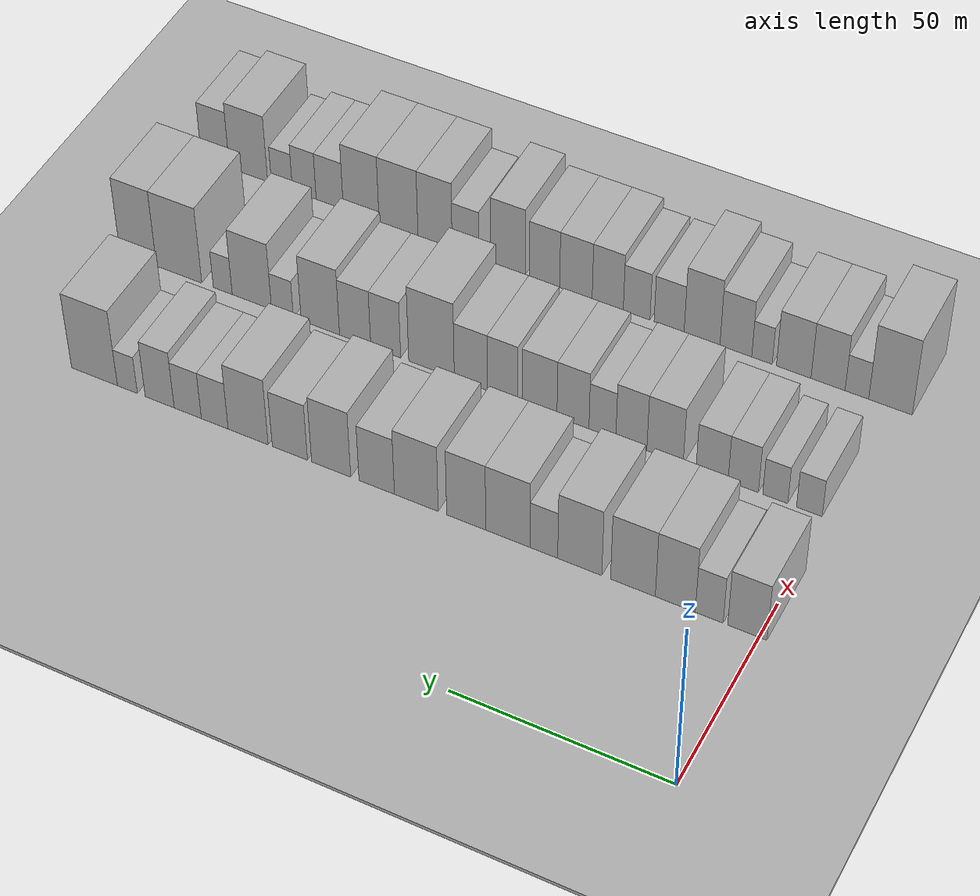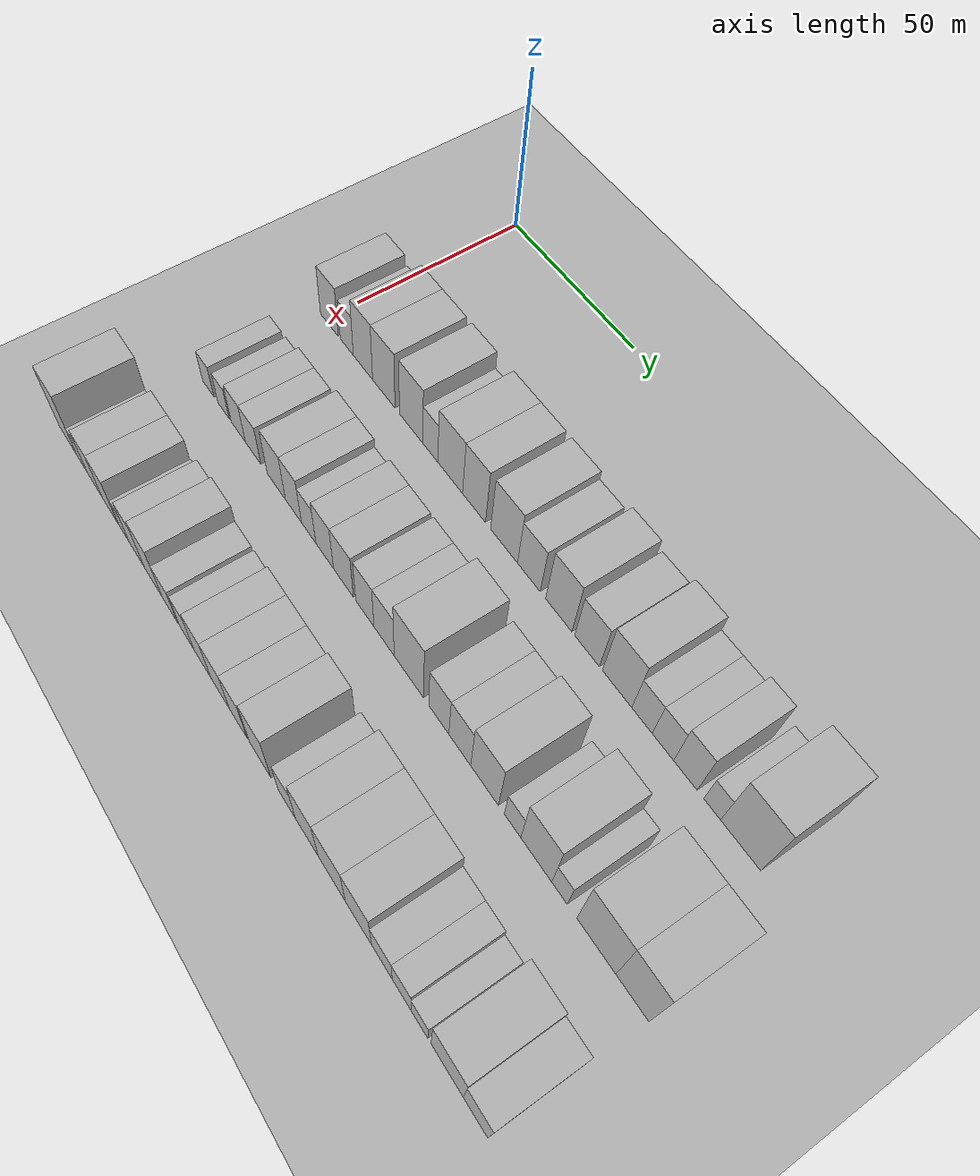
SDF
<sdf version="1.6">
 <world name="default">
  <include><name>ground_plane_1</name><uri>model://HANNAS_ground_plane</uri></include>
  <include>
   <name>ground_plane_2</name>
   <uri>model://HANNAS_ground_plane</uri>
   <pose>100 0 0  0 0 0</pose>
  </include>
  <model name="building_40">
   <static>1</static>
   <pose>50.0000 2.5800 0 0.000000 0.000000 0.000000</pose>
   <link name="link">
    <pose>0 0 9.00 0 0 0</pose>
    <collision name="collision"><geometry><box><size>20.0000 8.7044 18.0000</size></box></geometry></collision>
    <visual name="visual">
     <cast_shadows>0</cast_shadows>
     <geometry><box><size>20.0000 8.7044 18.0000</size></box></geometry>
     <material>
      <script>
       <uri>model://HANNAS_wall/materials/scripts</uri>
       <uri>model://HANNAS_wall/materials/textures</uri>
       <name>vrc/HANNAS_wall</name>
      </script>
     </material>
    </visual>
   </link>
  </model>
  <model name="building_41">
   <static>1</static>
   <pose>50.0000 11.0477 0 0.000000 0.000000 0.000000</pose>
   <link name="link">
    <pose>0 0 7.50 0 0 0</pose>
    <collision name="collision"><geometry><box><size>20.0000 6.2310 15.0000</size></box></geometry></collision>
    <visual name="visual">
     <cast_shadows>0</cast_shadows>
     <geometry><box><size>20.0000 6.2310 15.0000</size></box></geometry>
     <material>
      <script>
       <uri>model://HANNAS_wall/materials/scripts</uri>
       <uri>model://HANNAS_wall/materials/textures</uri>
       <name>vrc/HANNAS_wall</name>
      </script>
     </material>
    </visual>
   </link>
  </model>
  <model name="building_42">
   <static>1</static>
   <pose>50.0000 18.6587 0 0.000000 0.000000 0.000000</pose>
   <link name="link">
    <pose>0 0 10.50 0 0 0</pose>
    <collision name="collision"><geometry><box><size>20.0000 8.9911 21.0000</size></box></geometry></collision>
    <visual name="visual">
     <cast_shadows>0</cast_shadows>
     <geometry><box><size>20.0000 8.9911 21.0000</size></box></geometry>
     <material>
      <script>
       <uri>model://HANNAS_wall/materials/scripts</uri>
       <uri>model://HANNAS_wall/materials/textures</uri>
       <name>vrc/HANNAS_wall</name>
      </script>
     </material>
    </visual>
   </link>
  </model>
  <model name="building_43">
   <static>1</static>
   <pose>50.0000 28.2336 0 0.000000 0.000000 0.000000</pose>
   <link name="link">
    <pose>0 0 10.50 0 0 0</pose>
    <collision name="collision"><geometry><box><size>20.0000 10.1586 21.0000</size></box></geometry></collision>
    <visual name="visual">
     <cast_shadows>0</cast_shadows>
     <geometry><box><size>20.0000 10.1586 21.0000</size></box></geometry>
     <material>
      <script>
       <uri>model://HANNAS_wall/materials/scripts</uri>
       <uri>model://HANNAS_wall/materials/textures</uri>
       <name>vrc/HANNAS_wall</name>
      </script>
     </material>
    </visual>
   </link>
  </model>
  <model name="building_44">
   <static>1</static>
   <pose>50.0000 40.3800 0 0.000000 0.000000 0.000000</pose>
   <link name="link">
    <pose>0 0 10.50 0 0 0</pose>
    <collision name="collision"><geometry><box><size>20.0000 10.1344 21.0000</size></box></geometry></collision>
    <visual name="visual">
     <cast_shadows>0</cast_shadows>
     <geometry><box><size>20.0000 10.1344 21.0000</size></box></geometry>
     <material>
      <script>
       <uri>model://HANNAS_wall/materials/scripts</uri>
       <uri>model://HANNAS_wall/materials/textures</uri>
       <name>vrc/HANNAS_wall</name>
      </script>
     </material>
    </visual>
   </link>
  </model>
  <model name="building_45">
   <static>1</static>
   <pose>50.0000 48.6427 0 0.000000 0.000000 0.000000</pose>
   <link name="link">
    <pose>0 0 7.50 0 0 0</pose>
    <collision name="collision"><geometry><box><size>20.0000 6.3910 15.0000</size></box></geometry></collision>
    <visual name="visual">
     <cast_shadows>0</cast_shadows>
     <geometry><box><size>20.0000 6.3910 15.0000</size></box></geometry>
     <material>
      <script>
       <uri>model://HANNAS_wall/materials/scripts</uri>
       <uri>model://HANNAS_wall/materials/textures</uri>
       <name>vrc/HANNAS_wall</name>
      </script>
     </material>
    </visual>
   </link>
  </model>
  <model name="building_46">
   <static>1</static>
   <pose>50.0000 57.0125 0 0.000000 0.000000 0.000000</pose>
   <link name="link">
    <pose>0 0 10.50 0 0 0</pose>
    <collision name="collision"><geometry><box><size>20.0000 10.3484 21.0000</size></box></geometry></collision>
    <visual name="visual">
     <cast_shadows>0</cast_shadows>
     <geometry><box><size>20.0000 10.3484 21.0000</size></box></geometry>
     <material>
      <script>
       <uri>model://HANNAS_wall/materials/scripts</uri>
       <uri>model://HANNAS_wall/materials/textures</uri>
       <name>vrc/HANNAS_wall</name>
      </script>
     </material>
    </visual>
   </link>
  </model>
  <model name="building_47">
   <static>1</static>
   <pose>50.0000 66.7829 0 0.000000 0.000000 0.000000</pose>
   <link name="link">
    <pose>0 0 10.50 0 0 0</pose>
    <collision name="collision"><geometry><box><size>20.0000 9.1924 21.0000</size></box></geometry></collision>
    <visual name="visual">
     <cast_shadows>0</cast_shadows>
     <geometry><box><size>20.0000 9.1924 21.0000</size></box></geometry>
     <material>
      <script>
       <uri>model://HANNAS_wall/materials/scripts</uri>
       <uri>model://HANNAS_wall/materials/textures</uri>
       <name>vrc/HANNAS_wall</name>
      </script>
     </material>
    </visual>
   </link>
  </model>
  <model name="building_48">
   <static>1</static>
   <pose>50.0000 78.5905 0 0.000000 0.000000 0.000000</pose>
   <link name="link">
    <pose>0 0 10.50 0 0 0</pose>
    <collision name="collision"><geometry><box><size>20.0000 10.4228 21.0000</size></box></geometry></collision>
    <visual name="visual">
     <cast_shadows>0</cast_shadows>
     <geometry><box><size>20.0000 10.4228 21.0000</size></box></geometry>
     <material>
      <script>
       <uri>model://HANNAS_wall/materials/scripts</uri>
       <uri>model://HANNAS_wall/materials/textures</uri>
       <name>vrc/HANNAS_wall</name>
      </script>
     </material>
    </visual>
   </link>
  </model>
  <model name="building_49">
   <static>1</static>
   <pose>50.0000 88.0607 0 0.000000 0.000000 0.000000</pose>
   <link name="link">
    <pose>0 0 9.00 0 0 0</pose>
    <collision name="collision"><geometry><box><size>20.0000 8.5175 18.0000</size></box></geometry></collision>
    <visual name="visual">
     <cast_shadows>0</cast_shadows>
     <geometry><box><size>20.0000 8.5175 18.0000</size></box></geometry>
     <material>
      <script>
       <uri>model://HANNAS_wall/materials/scripts</uri>
       <uri>model://HANNAS_wall/materials/textures</uri>
       <name>vrc/HANNAS_wall</name>
      </script>
     </material>
    </visual>
   </link>
  </model>
  <model name="building_50">
   <static>1</static>
   <pose>50.0000 99.0677 0 0.000000 0.000000 0.000000</pose>
   <link name="link">
    <pose>0 0 10.50 0 0 0</pose>
    <collision name="collision"><geometry><box><size>20.0000 9.4965 21.0000</size></box></geometry></collision>
    <visual name="visual">
     <cast_shadows>0</cast_shadows>
     <geometry><box><size>20.0000 9.4965 21.0000</size></box></geometry>
     <material>
      <script>
       <uri>model://HANNAS_wall/materials/scripts</uri>
       <uri>model://HANNAS_wall/materials/textures</uri>
       <name>vrc/HANNAS_wall</name>
      </script>
     </material>
    </visual>
   </link>
  </model>
  <model name="building_51">
   <static>1</static>
   <pose>50.0000 109.1361 0 0.000000 0.000000 0.000000</pose>
   <link name="link">
    <pose>0 0 9.00 0 0 0</pose>
    <collision name="collision"><geometry><box><size>20.0000 8.6402 18.0000</size></box></geometry></collision>
    <visual name="visual">
     <cast_shadows>0</cast_shadows>
     <geometry><box><size>20.0000 8.6402 18.0000</size></box></geometry>
     <material>
      <script>
       <uri>model://HANNAS_wall/materials/scripts</uri>
       <uri>model://HANNAS_wall/materials/textures</uri>
       <name>vrc/HANNAS_wall</name>
      </script>
     </material>
    </visual>
   </link>
  </model>
  <model name="building_52">
   <static>1</static>
   <pose>50.0000 119.4093 0 0.000000 0.000000 0.000000</pose>
   <link name="link">
    <pose>0 0 10.50 0 0 0</pose>
    <collision name="collision"><geometry><box><size>20.0000 9.9062 21.0000</size></box></geometry></collision>
    <visual name="visual">
     <cast_shadows>0</cast_shadows>
     <geometry><box><size>20.0000 9.9062 21.0000</size></box></geometry>
     <material>
      <script>
       <uri>model://HANNAS_wall/materials/scripts</uri>
       <uri>model://HANNAS_wall/materials/textures</uri>
       <name>vrc/HANNAS_wall</name>
      </script>
     </material>
    </visual>
   </link>
  </model>
  <model name="building_53">
   <static>1</static>
   <pose>50.0000 127.7093 0 0.000000 0.000000 0.000000</pose>
   <link name="link">
    <pose>0 0 7.50 0 0 0</pose>
    <collision name="collision"><geometry><box><size>20.0000 6.6939 15.0000</size></box></geometry></collision>
    <visual name="visual">
     <cast_shadows>0</cast_shadows>
     <geometry><box><size>20.0000 6.6939 15.0000</size></box></geometry>
     <material>
      <script>
       <uri>model://HANNAS_wall/materials/scripts</uri>
       <uri>model://HANNAS_wall/materials/textures</uri>
       <name>vrc/HANNAS_wall</name>
      </script>
     </material>
    </visual>
   </link>
  </model>
  <model name="building_54">
   <static>1</static>
   <pose>50.0000 134.4612 0 0.000000 0.000000 0.000000</pose>
   <link name="link">
    <pose>0 0 7.50 0 0 0</pose>
    <collision name="collision"><geometry><box><size>20.0000 6.8099 15.0000</size></box></geometry></collision>
    <visual name="visual">
     <cast_shadows>0</cast_shadows>
     <geometry><box><size>20.0000 6.8099 15.0000</size></box></geometry>
     <material>
      <script>
       <uri>model://HANNAS_wall/materials/scripts</uri>
       <uri>model://HANNAS_wall/materials/textures</uri>
       <name>vrc/HANNAS_wall</name>
      </script>
     </material>
    </visual>
   </link>
  </model>
  <model name="building_55">
   <static>1</static>
   <pose>50.0000 141.5193 0 0.000000 0.000000 0.000000</pose>
   <link name="link">
    <pose>0 0 9.00 0 0 0</pose>
    <collision name="collision"><geometry><box><size>20.0000 7.3063 18.0000</size></box></geometry></collision>
    <visual name="visual">
     <cast_shadows>0</cast_shadows>
     <geometry><box><size>20.0000 7.3063 18.0000</size></box></geometry>
     <material>
      <script>
       <uri>model://HANNAS_wall/materials/scripts</uri>
       <uri>model://HANNAS_wall/materials/textures</uri>
       <name>vrc/HANNAS_wall</name>
      </script>
     </material>
    </visual>
   </link>
  </model>
  <model name="building_56">
   <static>1</static>
   <pose>50.0000 149.7104 0 0.000000 0.000000 0.000000</pose>
   <link name="link">
    <pose>0 0 6.00 0 0 0</pose>
    <collision name="collision"><geometry><box><size>20.0000 5.0759 12.0000</size></box></geometry></collision>
    <visual name="visual">
     <cast_shadows>0</cast_shadows>
     <geometry><box><size>20.0000 5.0759 12.0000</size></box></geometry>
     <material>
      <script>
       <uri>model://HANNAS_wall/materials/scripts</uri>
       <uri>model://HANNAS_wall/materials/textures</uri>
       <name>vrc/HANNAS_wall</name>
      </script>
     </material>
    </visual>
   </link>
  </model>
  <model name="building_57">
   <static>1</static>
   <pose>50.0000 158.1207 0 0.000000 0.000000 0.000000</pose>
   <link name="link">
    <pose>0 0 12.00 0 0 0</pose>
    <collision name="collision"><geometry><box><size>20.0000 11.7447 24.0000</size></box></geometry></collision>
    <visual name="visual">
     <cast_shadows>0</cast_shadows>
     <geometry><box><size>20.0000 11.7447 24.0000</size></box></geometry>
     <material>
      <script>
       <uri>model://HANNAS_wall/materials/scripts</uri>
       <uri>model://HANNAS_wall/materials/textures</uri>
       <name>vrc/HANNAS_wall</name>
      </script>
     </material>
    </visual>
   </link>
  </model>
  <model name="building_119">
   <static>1</static>
   <pose>85.0000 3.7674 0 0.000000 0.000000 0.000000</pose>
   <link name="link">
    <pose>0 0 6.00 0 0 0</pose>
    <collision name="collision"><geometry><box><size>20.0000 5.8581 12.0000</size></box></geometry></collision>
    <visual name="visual">
     <cast_shadows>0</cast_shadows>
     <geometry><box><size>20.0000 5.8581 12.0000</size></box></geometry>
     <material>
      <script>
       <uri>model://HANNAS_wall/materials/scripts</uri>
       <uri>model://HANNAS_wall/materials/textures</uri>
       <name>vrc/HANNAS_wall</name>
      </script>
     </material>
    </visual>
   </link>
  </model>
  <model name="building_120">
   <static>1</static>
   <pose>85.0000 11.5630 0 0.000000 0.000000 0.000000</pose>
   <link name="link">
    <pose>0 0 6.00 0 0 0</pose>
    <collision name="collision"><geometry><box><size>20.0000 5.7331 12.0000</size></box></geometry></collision>
    <visual name="visual">
     <cast_shadows>0</cast_shadows>
     <geometry><box><size>20.0000 5.7331 12.0000</size></box></geometry>
     <material>
      <script>
       <uri>model://HANNAS_wall/materials/scripts</uri>
       <uri>model://HANNAS_wall/materials/textures</uri>
       <name>vrc/HANNAS_wall</name>
      </script>
     </material>
    </visual>
   </link>
  </model>
  <model name="building_121">
   <static>1</static>
   <pose>85.0000 18.9220 0 0.000000 0.000000 0.000000</pose>
   <link name="link">
    <pose>0 0 7.50 0 0 0</pose>
    <collision name="collision"><geometry><box><size>20.0000 6.9850 15.0000</size></box></geometry></collision>
    <visual name="visual">
     <cast_shadows>0</cast_shadows>
     <geometry><box><size>20.0000 6.9850 15.0000</size></box></geometry>
     <material>
      <script>
       <uri>model://HANNAS_wall/materials/scripts</uri>
       <uri>model://HANNAS_wall/materials/textures</uri>
       <name>vrc/HANNAS_wall</name>
      </script>
     </material>
    </visual>
   </link>
  </model>
  <model name="building_122">
   <static>1</static>
   <pose>85.0000 26.1409 0 0.000000 0.000000 0.000000</pose>
   <link name="link">
    <pose>0 0 7.50 0 0 0</pose>
    <collision name="collision"><geometry><box><size>20.0000 7.4527 15.0000</size></box></geometry></collision>
    <visual name="visual">
     <cast_shadows>0</cast_shadows>
     <geometry><box><size>20.0000 7.4527 15.0000</size></box></geometry>
     <material>
      <script>
       <uri>model://HANNAS_wall/materials/scripts</uri>
       <uri>model://HANNAS_wall/materials/textures</uri>
       <name>vrc/HANNAS_wall</name>
      </script>
     </material>
    </visual>
   </link>
  </model>
  <model name="building_123">
   <static>1</static>
   <pose>85.0000 37.1356 0 0.000000 0.000000 0.000000</pose>
   <link name="link">
    <pose>0 0 9.00 0 0 0</pose>
    <collision name="collision"><geometry><box><size>20.0000 8.5367 18.0000</size></box></geometry></collision>
    <visual name="visual">
     <cast_shadows>0</cast_shadows>
     <geometry><box><size>20.0000 8.5367 18.0000</size></box></geometry>
     <material>
      <script>
       <uri>model://HANNAS_wall/materials/scripts</uri>
       <uri>model://HANNAS_wall/materials/textures</uri>
       <name>vrc/HANNAS_wall</name>
      </script>
     </material>
    </visual>
   </link>
  </model>
  <model name="building_124">
   <static>1</static>
   <pose>85.0000 45.0739 0 0.000000 0.000000 0.000000</pose>
   <link name="link">
    <pose>0 0 9.00 0 0 0</pose>
    <collision name="collision"><geometry><box><size>20.0000 7.3400 18.0000</size></box></geometry></collision>
    <visual name="visual">
     <cast_shadows>0</cast_shadows>
     <geometry><box><size>20.0000 7.3400 18.0000</size></box></geometry>
     <material>
      <script>
       <uri>model://HANNAS_wall/materials/scripts</uri>
       <uri>model://HANNAS_wall/materials/textures</uri>
       <name>vrc/HANNAS_wall</name>
      </script>
     </material>
    </visual>
   </link>
  </model>
  <model name="building_125">
   <static>1</static>
   <pose>85.0000 51.9374 0 0.000000 0.000000 0.000000</pose>
   <link name="link">
    <pose>0 0 7.50 0 0 0</pose>
    <collision name="collision"><geometry><box><size>20.0000 6.3870 15.0000</size></box></geometry></collision>
    <visual name="visual">
     <cast_shadows>0</cast_shadows>
     <geometry><box><size>20.0000 6.3870 15.0000</size></box></geometry>
     <material>
      <script>
       <uri>model://HANNAS_wall/materials/scripts</uri>
       <uri>model://HANNAS_wall/materials/textures</uri>
       <name>vrc/HANNAS_wall</name>
      </script>
     </material>
    </visual>
   </link>
  </model>
  <model name="building_126">
   <static>1</static>
   <pose>85.0000 58.9642 0 0.000000 0.000000 0.000000</pose>
   <link name="link">
    <pose>0 0 9.00 0 0 0</pose>
    <collision name="collision"><geometry><box><size>20.0000 7.6666 18.0000</size></box></geometry></collision>
    <visual name="visual">
     <cast_shadows>0</cast_shadows>
     <geometry><box><size>20.0000 7.6666 18.0000</size></box></geometry>
     <material>
      <script>
       <uri>model://HANNAS_wall/materials/scripts</uri>
       <uri>model://HANNAS_wall/materials/textures</uri>
       <name>vrc/HANNAS_wall</name>
      </script>
     </material>
    </visual>
   </link>
  </model>
  <model name="building_127">
   <static>1</static>
   <pose>85.0000 67.0085 0 0.000000 0.000000 0.000000</pose>
   <link name="link">
    <pose>0 0 9.00 0 0 0</pose>
    <collision name="collision"><geometry><box><size>20.0000 8.4220 18.0000</size></box></geometry></collision>
    <visual name="visual">
     <cast_shadows>0</cast_shadows>
     <geometry><box><size>20.0000 8.4220 18.0000</size></box></geometry>
     <material>
      <script>
       <uri>model://HANNAS_wall/materials/scripts</uri>
       <uri>model://HANNAS_wall/materials/textures</uri>
       <name>vrc/HANNAS_wall</name>
      </script>
     </material>
    </visual>
   </link>
  </model>
  <model name="building_128">
   <static>1</static>
   <pose>85.0000 75.9339 0 0.000000 0.000000 0.000000</pose>
   <link name="link">
    <pose>0 0 9.00 0 0 0</pose>
    <collision name="collision"><geometry><box><size>20.0000 7.4289 18.0000</size></box></geometry></collision>
    <visual name="visual">
     <cast_shadows>0</cast_shadows>
     <geometry><box><size>20.0000 7.4289 18.0000</size></box></geometry>
     <material>
      <script>
       <uri>model://HANNAS_wall/materials/scripts</uri>
       <uri>model://HANNAS_wall/materials/textures</uri>
       <name>vrc/HANNAS_wall</name>
      </script>
     </material>
    </visual>
   </link>
  </model>
  <model name="building_129">
   <static>1</static>
   <pose>85.0000 83.6992 0 0.000000 0.000000 0.000000</pose>
   <link name="link">
    <pose>0 0 9.00 0 0 0</pose>
    <collision name="collision"><geometry><box><size>20.0000 8.1017 18.0000</size></box></geometry></collision>
    <visual name="visual">
     <cast_shadows>0</cast_shadows>
     <geometry><box><size>20.0000 8.1017 18.0000</size></box></geometry>
     <material>
      <script>
       <uri>model://HANNAS_wall/materials/scripts</uri>
       <uri>model://HANNAS_wall/materials/textures</uri>
       <name>vrc/HANNAS_wall</name>
      </script>
     </material>
    </visual>
   </link>
  </model>
  <model name="building_130">
   <static>1</static>
   <pose>85.0000 93.3868 0 0.000000 0.000000 0.000000</pose>
   <link name="link">
    <pose>0 0 12.00 0 0 0</pose>
    <collision name="collision"><geometry><box><size>20.0000 11.2734 24.0000</size></box></geometry></collision>
    <visual name="visual">
     <cast_shadows>0</cast_shadows>
     <geometry><box><size>20.0000 11.2734 24.0000</size></box></geometry>
     <material>
      <script>
       <uri>model://HANNAS_wall/materials/scripts</uri>
       <uri>model://HANNAS_wall/materials/textures</uri>
       <name>vrc/HANNAS_wall</name>
      </script>
     </material>
    </visual>
   </link>
  </model>
  <model name="building_131">
   <static>1</static>
   <pose>85.0000 104.7576 0 0.000000 0.000000 0.000000</pose>
   <link name="link">
    <pose>0 0 9.00 0 0 0</pose>
    <collision name="collision"><geometry><box><size>20.0000 7.4684 18.0000</size></box></geometry></collision>
    <visual name="visual">
     <cast_shadows>0</cast_shadows>
     <geometry><box><size>20.0000 7.4684 18.0000</size></box></geometry>
     <material>
      <script>
       <uri>model://HANNAS_wall/materials/scripts</uri>
       <uri>model://HANNAS_wall/materials/textures</uri>
       <name>vrc/HANNAS_wall</name>
      </script>
     </material>
    </visual>
   </link>
  </model>
  <model name="building_132">
   <static>1</static>
   <pose>85.0000 112.4216 0 0.000000 0.000000 0.000000</pose>
   <link name="link">
    <pose>0 0 9.00 0 0 0</pose>
    <collision name="collision"><geometry><box><size>20.0000 7.8596 18.0000</size></box></geometry></collision>
    <visual name="visual">
     <cast_shadows>0</cast_shadows>
     <geometry><box><size>20.0000 7.8596 18.0000</size></box></geometry>
     <material>
      <script>
       <uri>model://HANNAS_wall/materials/scripts</uri>
       <uri>model://HANNAS_wall/materials/textures</uri>
       <name>vrc/HANNAS_wall</name>
      </script>
     </material>
    </visual>
   </link>
  </model>
  <model name="building_133">
   <static>1</static>
   <pose>85.0000 121.2166 0 0.000000 0.000000 0.000000</pose>
   <link name="link">
    <pose>0 0 10.50 0 0 0</pose>
    <collision name="collision"><geometry><box><size>20.0000 9.7303 21.0000</size></box></geometry></collision>
    <visual name="visual">
     <cast_shadows>0</cast_shadows>
     <geometry><box><size>20.0000 9.7303 21.0000</size></box></geometry>
     <material>
      <script>
       <uri>model://HANNAS_wall/materials/scripts</uri>
       <uri>model://HANNAS_wall/materials/textures</uri>
       <name>vrc/HANNAS_wall</name>
      </script>
     </material>
    </visual>
   </link>
  </model>
  <model name="building_134">
   <static>1</static>
   <pose>85.0000 130.8721 0 0.000000 0.000000 0.000000</pose>
   <link name="link">
    <pose>0 0 6.00 0 0 0</pose>
    <collision name="collision"><geometry><box><size>20.0000 5.5806 12.0000</size></box></geometry></collision>
    <visual name="visual">
     <cast_shadows>0</cast_shadows>
     <geometry><box><size>20.0000 5.5806 12.0000</size></box></geometry>
     <material>
      <script>
       <uri>model://HANNAS_wall/materials/scripts</uri>
       <uri>model://HANNAS_wall/materials/textures</uri>
       <name>vrc/HANNAS_wall</name>
      </script>
     </material>
    </visual>
   </link>
  </model>
  <model name="building_135">
   <static>1</static>
   <pose>85.0000 138.7274 0 0.000000 0.000000 0.000000</pose>
   <link name="link">
    <pose>0 0 10.50 0 0 0</pose>
    <collision name="collision"><geometry><box><size>20.0000 10.1302 21.0000</size></box></geometry></collision>
    <visual name="visual">
     <cast_shadows>0</cast_shadows>
     <geometry><box><size>20.0000 10.1302 21.0000</size></box></geometry>
     <material>
      <script>
       <uri>model://HANNAS_wall/materials/scripts</uri>
       <uri>model://HANNAS_wall/materials/textures</uri>
       <name>vrc/HANNAS_wall</name>
      </script>
     </material>
    </visual>
   </link>
  </model>
  <model name="building_136">
   <static>1</static>
   <pose>85.0000 146.2410 0 0.000000 0.000000 0.000000</pose>
   <link name="link">
    <pose>0 0 6.00 0 0 0</pose>
    <collision name="collision"><geometry><box><size>20.0000 4.8968 12.0000</size></box></geometry></collision>
    <visual name="visual">
     <cast_shadows>0</cast_shadows>
     <geometry><box><size>20.0000 4.8968 12.0000</size></box></geometry>
     <material>
      <script>
       <uri>model://HANNAS_wall/materials/scripts</uri>
       <uri>model://HANNAS_wall/materials/textures</uri>
       <name>vrc/HANNAS_wall</name>
      </script>
     </material>
    </visual>
   </link>
  </model>
  <model name="building_137">
   <static>1</static>
   <pose>85.0000 157.6282 0 0.000000 0.000000 0.000000</pose>
   <link name="link">
    <pose>0 0 12.00 0 0 0</pose>
    <collision name="collision"><geometry><box><size>20.0000 11.8776 24.0000</size></box></geometry></collision>
    <visual name="visual">
     <cast_shadows>0</cast_shadows>
     <geometry><box><size>20.0000 11.8776 24.0000</size></box></geometry>
     <material>
      <script>
       <uri>model://HANNAS_wall/materials/scripts</uri>
       <uri>model://HANNAS_wall/materials/textures</uri>
       <name>vrc/HANNAS_wall</name>
      </script>
     </material>
    </visual>
   </link>
  </model>
  <model name="building_138">
   <static>1</static>
   <pose>85.0000 168.3923 0 0.000000 0.000000 0.000000</pose>
   <link name="link">
    <pose>0 0 12.00 0 0 0</pose>
    <collision name="collision"><geometry><box><size>20.0000 9.6506 24.0000</size></box></geometry></collision>
    <visual name="visual">
     <cast_shadows>0</cast_shadows>
     <geometry><box><size>20.0000 9.6506 24.0000</size></box></geometry>
     <material>
      <script>
       <uri>model://HANNAS_wall/materials/scripts</uri>
       <uri>model://HANNAS_wall/materials/textures</uri>
       <name>vrc/HANNAS_wall</name>
      </script>
     </material>
    </visual>
   </link>
  </model>
  <model name="building_201">
   <static>1</static>
   <pose>120.0000 -0.4306 0 0.000000 0.000000 0.000000</pose>
   <link name="link">
    <pose>0 0 12.00 0 0 0</pose>
    <collision name="collision"><geometry><box><size>20.0000 10.1494 24.0000</size></box></geometry></collision>
    <visual name="visual">
     <cast_shadows>0</cast_shadows>
     <geometry><box><size>20.0000 10.1494 24.0000</size></box></geometry>
     <material>
      <script>
       <uri>model://HANNAS_wall/materials/scripts</uri>
       <uri>model://HANNAS_wall/materials/textures</uri>
       <name>vrc/HANNAS_wall</name>
      </script>
     </material>
    </visual>
   </link>
  </model>
  <model name="building_202">
   <static>1</static>
   <pose>120.0000 7.4029 0 0.000000 0.000000 0.000000</pose>
   <link name="link">
    <pose>0 0 6.00 0 0 0</pose>
    <collision name="collision"><geometry><box><size>20.0000 5.5177 12.0000</size></box></geometry></collision>
    <visual name="visual">
     <cast_shadows>0</cast_shadows>
     <geometry><box><size>20.0000 5.5177 12.0000</size></box></geometry>
     <material>
      <script>
       <uri>model://HANNAS_wall/materials/scripts</uri>
       <uri>model://HANNAS_wall/materials/textures</uri>
       <name>vrc/HANNAS_wall</name>
      </script>
     </material>
    </visual>
   </link>
  </model>
  <model name="building_203">
   <static>1</static>
   <pose>120.0000 14.1836 0 0.000000 0.000000 0.000000</pose>
   <link name="link">
    <pose>0 0 9.00 0 0 0</pose>
    <collision name="collision"><geometry><box><size>20.0000 8.0437 18.0000</size></box></geometry></collision>
    <visual name="visual">
     <cast_shadows>0</cast_shadows>
     <geometry><box><size>20.0000 8.0437 18.0000</size></box></geometry>
     <material>
      <script>
       <uri>model://HANNAS_wall/materials/scripts</uri>
       <uri>model://HANNAS_wall/materials/textures</uri>
       <name>vrc/HANNAS_wall</name>
      </script>
     </material>
    </visual>
   </link>
  </model>
  <model name="building_204">
   <static>1</static>
   <pose>120.0000 22.3104 0 0.000000 0.000000 0.000000</pose>
   <link name="link">
    <pose>0 0 9.00 0 0 0</pose>
    <collision name="collision"><geometry><box><size>20.0000 8.2099 18.0000</size></box></geometry></collision>
    <visual name="visual">
     <cast_shadows>0</cast_shadows>
     <geometry><box><size>20.0000 8.2099 18.0000</size></box></geometry>
     <material>
      <script>
       <uri>model://HANNAS_wall/materials/scripts</uri>
       <uri>model://HANNAS_wall/materials/textures</uri>
       <name>vrc/HANNAS_wall</name>
      </script>
     </material>
    </visual>
   </link>
  </model>
  <model name="building_205">
   <static>1</static>
   <pose>120.0000 29.8627 0 0.000000 0.000000 0.000000</pose>
   <link name="link">
    <pose>0 0 6.00 0 0 0</pose>
    <collision name="collision"><geometry><box><size>20.0000 4.8945 12.0000</size></box></geometry></collision>
    <visual name="visual">
     <cast_shadows>0</cast_shadows>
     <geometry><box><size>20.0000 4.8945 12.0000</size></box></geometry>
     <material>
      <script>
       <uri>model://HANNAS_wall/materials/scripts</uri>
       <uri>model://HANNAS_wall/materials/textures</uri>
       <name>vrc/HANNAS_wall</name>
      </script>
     </material>
    </visual>
   </link>
  </model>
  <model name="building_206">
   <static>1</static>
   <pose>120.0000 36.1355 0 0.000000 0.000000 0.000000</pose>
   <link name="link">
    <pose>0 0 9.00 0 0 0</pose>
    <collision name="collision"><geometry><box><size>20.0000 7.6512 18.0000</size></box></geometry></collision>
    <visual name="visual">
     <cast_shadows>0</cast_shadows>
     <geometry><box><size>20.0000 7.6512 18.0000</size></box></geometry>
     <material>
      <script>
       <uri>model://HANNAS_wall/materials/scripts</uri>
       <uri>model://HANNAS_wall/materials/textures</uri>
       <name>vrc/HANNAS_wall</name>
      </script>
     </material>
    </visual>
   </link>
  </model>
  <model name="building_207">
   <static>1</static>
   <pose>120.0000 44.3033 0 0.000000 0.000000 0.000000</pose>
   <link name="link">
    <pose>0 0 10.50 0 0 0</pose>
    <collision name="collision"><geometry><box><size>20.0000 8.6844 21.0000</size></box></geometry></collision>
    <visual name="visual">
     <cast_shadows>0</cast_shadows>
     <geometry><box><size>20.0000 8.6844 21.0000</size></box></geometry>
     <material>
      <script>
       <uri>model://HANNAS_wall/materials/scripts</uri>
       <uri>model://HANNAS_wall/materials/textures</uri>
       <name>vrc/HANNAS_wall</name>
      </script>
     </material>
    </visual>
   </link>
  </model>
  <model name="building_208">
   <static>1</static>
   <pose>120.0000 52.2998 0 0.000000 0.000000 0.000000</pose>
   <link name="link">
    <pose>0 0 7.50 0 0 0</pose>
    <collision name="collision"><geometry><box><size>20.0000 7.3086 15.0000</size></box></geometry></collision>
    <visual name="visual">
     <cast_shadows>0</cast_shadows>
     <geometry><box><size>20.0000 7.3086 15.0000</size></box></geometry>
     <material>
      <script>
       <uri>model://HANNAS_wall/materials/scripts</uri>
       <uri>model://HANNAS_wall/materials/textures</uri>
       <name>vrc/HANNAS_wall</name>
      </script>
     </material>
    </visual>
   </link>
  </model>
  <model name="building_209">
   <static>1</static>
   <pose>120.0000 60.2390 0 0.000000 0.000000 0.000000</pose>
   <link name="link">
    <pose>0 0 7.50 0 0 0</pose>
    <collision name="collision"><geometry><box><size>20.0000 6.5697 15.0000</size></box></geometry></collision>
    <visual name="visual">
     <cast_shadows>0</cast_shadows>
     <geometry><box><size>20.0000 6.5697 15.0000</size></box></geometry>
     <material>
      <script>
       <uri>model://HANNAS_wall/materials/scripts</uri>
       <uri>model://HANNAS_wall/materials/textures</uri>
       <name>vrc/HANNAS_wall</name>
      </script>
     </material>
    </visual>
   </link>
  </model>
  <model name="building_210">
   <static>1</static>
   <pose>120.0000 67.3744 0 0.000000 0.000000 0.000000</pose>
   <link name="link">
    <pose>0 0 9.00 0 0 0</pose>
    <collision name="collision"><geometry><box><size>20.0000 7.7012 18.0000</size></box></geometry></collision>
    <visual name="visual">
     <cast_shadows>0</cast_shadows>
     <geometry><box><size>20.0000 7.7012 18.0000</size></box></geometry>
     <material>
      <script>
       <uri>model://HANNAS_wall/materials/scripts</uri>
       <uri>model://HANNAS_wall/materials/textures</uri>
       <name>vrc/HANNAS_wall</name>
      </script>
     </material>
    </visual>
   </link>
  </model>
  <model name="building_211">
   <static>1</static>
   <pose>120.0000 75.2678 0 0.000000 0.000000 0.000000</pose>
   <link name="link">
    <pose>0 0 9.00 0 0 0</pose>
    <collision name="collision"><geometry><box><size>20.0000 8.0855 18.0000</size></box></geometry></collision>
    <visual name="visual">
     <cast_shadows>0</cast_shadows>
     <geometry><box><size>20.0000 8.0855 18.0000</size></box></geometry>
     <material>
      <script>
       <uri>model://HANNAS_wall/materials/scripts</uri>
       <uri>model://HANNAS_wall/materials/textures</uri>
       <name>vrc/HANNAS_wall</name>
      </script>
     </material>
    </visual>
   </link>
  </model>
  <model name="building_212">
   <static>1</static>
   <pose>120.0000 83.1230 0 0.000000 0.000000 0.000000</pose>
   <link name="link">
    <pose>0 0 9.00 0 0 0</pose>
    <collision name="collision"><geometry><box><size>20.0000 7.6250 18.0000</size></box></geometry></collision>
    <visual name="visual">
     <cast_shadows>0</cast_shadows>
     <geometry><box><size>20.0000 7.6250 18.0000</size></box></geometry>
     <material>
      <script>
       <uri>model://HANNAS_wall/materials/scripts</uri>
       <uri>model://HANNAS_wall/materials/textures</uri>
       <name>vrc/HANNAS_wall</name>
      </script>
     </material>
    </visual>
   </link>
  </model>
  <model name="building_213">
   <static>1</static>
   <pose>120.0000 92.3003 0 0.000000 0.000000 0.000000</pose>
   <link name="link">
    <pose>0 0 10.50 0 0 0</pose>
    <collision name="collision"><geometry><box><size>20.0000 8.7295 21.0000</size></box></geometry></collision>
    <visual name="visual">
     <cast_shadows>0</cast_shadows>
     <geometry><box><size>20.0000 8.7295 21.0000</size></box></geometry>
     <material>
      <script>
       <uri>model://HANNAS_wall/materials/scripts</uri>
       <uri>model://HANNAS_wall/materials/textures</uri>
       <name>vrc/HANNAS_wall</name>
      </script>
     </material>
    </visual>
   </link>
  </model>
  <model name="building_214">
   <static>1</static>
   <pose>120.0000 103.0760 0 0.000000 0.000000 0.000000</pose>
   <link name="link">
    <pose>0 0 7.50 0 0 0</pose>
    <collision name="collision"><geometry><box><size>20.0000 6.8219 15.0000</size></box></geometry></collision>
    <visual name="visual">
     <cast_shadows>0</cast_shadows>
     <geometry><box><size>20.0000 6.8219 15.0000</size></box></geometry>
     <material>
      <script>
       <uri>model://HANNAS_wall/materials/scripts</uri>
       <uri>model://HANNAS_wall/materials/textures</uri>
       <name>vrc/HANNAS_wall</name>
      </script>
     </material>
    </visual>
   </link>
  </model>
  <model name="building_215">
   <static>1</static>
   <pose>120.0000 110.8808 0 0.000000 0.000000 0.000000</pose>
   <link name="link">
    <pose>0 0 10.50 0 0 0</pose>
    <collision name="collision"><geometry><box><size>20.0000 8.7878 21.0000</size></box></geometry></collision>
    <visual name="visual">
     <cast_shadows>0</cast_shadows>
     <geometry><box><size>20.0000 8.7878 21.0000</size></box></geometry>
     <material>
      <script>
       <uri>model://HANNAS_wall/materials/scripts</uri>
       <uri>model://HANNAS_wall/materials/textures</uri>
       <name>vrc/HANNAS_wall</name>
      </script>
     </material>
    </visual>
   </link>
  </model>
  <model name="building_216">
   <static>1</static>
   <pose>120.0000 120.3133 0 0.000000 0.000000 0.000000</pose>
   <link name="link">
    <pose>0 0 10.50 0 0 0</pose>
    <collision name="collision"><geometry><box><size>20.0000 10.0772 21.0000</size></box></geometry></collision>
    <visual name="visual">
     <cast_shadows>0</cast_shadows>
     <geometry><box><size>20.0000 10.0772 21.0000</size></box></geometry>
     <material>
      <script>
       <uri>model://HANNAS_wall/materials/scripts</uri>
       <uri>model://HANNAS_wall/materials/textures</uri>
       <name>vrc/HANNAS_wall</name>
      </script>
     </material>
    </visual>
   </link>
  </model>
  <model name="building_217">
   <static>1</static>
   <pose>120.0000 130.0315 0 0.000000 0.000000 0.000000</pose>
   <link name="link">
    <pose>0 0 10.50 0 0 0</pose>
    <collision name="collision"><geometry><box><size>20.0000 9.3592 21.0000</size></box></geometry></collision>
    <visual name="visual">
     <cast_shadows>0</cast_shadows>
     <geometry><box><size>20.0000 9.3592 21.0000</size></box></geometry>
     <material>
      <script>
       <uri>model://HANNAS_wall/materials/scripts</uri>
       <uri>model://HANNAS_wall/materials/textures</uri>
       <name>vrc/HANNAS_wall</name>
      </script>
     </material>
    </visual>
   </link>
  </model>
  <model name="building_218">
   <static>1</static>
   <pose>120.0000 138.2787 0 0.000000 0.000000 0.000000</pose>
   <link name="link">
    <pose>0 0 7.50 0 0 0</pose>
    <collision name="collision"><geometry><box><size>20.0000 7.1351 15.0000</size></box></geometry></collision>
    <visual name="visual">
     <cast_shadows>0</cast_shadows>
     <geometry><box><size>20.0000 7.1351 15.0000</size></box></geometry>
     <material>
      <script>
       <uri>model://HANNAS_wall/materials/scripts</uri>
       <uri>model://HANNAS_wall/materials/textures</uri>
       <name>vrc/HANNAS_wall</name>
      </script>
     </material>
    </visual>
   </link>
  </model>
  <model name="building_219">
   <static>1</static>
   <pose>120.0000 144.9864 0 0.000000 0.000000 0.000000</pose>
   <link name="link">
    <pose>0 0 7.50 0 0 0</pose>
    <collision name="collision"><geometry><box><size>20.0000 6.2803 15.0000</size></box></geometry></collision>
    <visual name="visual">
     <cast_shadows>0</cast_shadows>
     <geometry><box><size>20.0000 6.2803 15.0000</size></box></geometry>
     <material>
      <script>
       <uri>model://HANNAS_wall/materials/scripts</uri>
       <uri>model://HANNAS_wall/materials/textures</uri>
       <name>vrc/HANNAS_wall</name>
      </script>
     </material>
    </visual>
   </link>
  </model>
  <model name="building_220">
   <static>1</static>
   <pose>120.0000 150.9267 0 0.000000 0.000000 0.000000</pose>
   <link name="link">
    <pose>0 0 6.00 0 0 0</pose>
    <collision name="collision"><geometry><box><size>20.0000 5.6004 12.0000</size></box></geometry></collision>
    <visual name="visual">
     <cast_shadows>0</cast_shadows>
     <geometry><box><size>20.0000 5.6004 12.0000</size></box></geometry>
     <material>
      <script>
       <uri>model://HANNAS_wall/materials/scripts</uri>
       <uri>model://HANNAS_wall/materials/textures</uri>
       <name>vrc/HANNAS_wall</name>
      </script>
     </material>
    </visual>
   </link>
  </model>
  <model name="building_221">
   <static>1</static>
   <pose>120.0000 159.8513 0 0.000000 0.000000 0.000000</pose>
   <link name="link">
    <pose>0 0 10.50 0 0 0</pose>
    <collision name="collision"><geometry><box><size>20.0000 10.2486 21.0000</size></box></geometry></collision>
    <visual name="visual">
     <cast_shadows>0</cast_shadows>
     <geometry><box><size>20.0000 10.2486 21.0000</size></box></geometry>
     <material>
      <script>
       <uri>model://HANNAS_wall/materials/scripts</uri>
       <uri>model://HANNAS_wall/materials/textures</uri>
       <name>vrc/HANNAS_wall</name>
      </script>
     </material>
    </visual>
   </link>
  </model>
  <model name="building_222">
   <static>1</static>
   <pose>120.0000 168.7551 0 0.000000 0.000000 0.000000</pose>
   <link name="link">
    <pose>0 0 9.00 0 0 0</pose>
    <collision name="collision"><geometry><box><size>20.0000 7.5590 18.0000</size></box></geometry></collision>
    <visual name="visual">
     <cast_shadows>0</cast_shadows>
     <geometry><box><size>20.0000 7.5590 18.0000</size></box></geometry>
     <material>
      <script>
       <uri>model://HANNAS_wall/materials/scripts</uri>
       <uri>model://HANNAS_wall/materials/textures</uri>
       <name>vrc/HANNAS_wall</name>
      </script>
     </material>
    </visual>
   </link>
  </model>
 </world>
</sdf>
